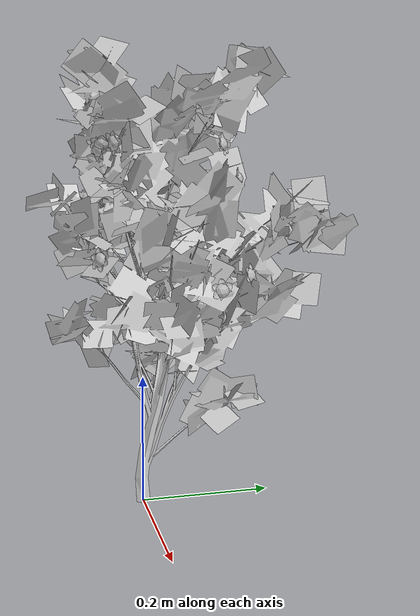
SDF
<?xml version="1.0" ?>
<sdf version="1.6">
  <model name="tree-flowers">
    <!--Skew-Seed:4174534792-->
    <static>true</static>
    <link name="link"/>
    <include>
      <uri>model://tree-mesh</uri>
      <pose>0 0 0 0 0 0</pose>
    </include>
    <joint name="tree_joint" type="fixed">
      <child>tree-mesh::link</child>
      <parent>link</parent>
    </joint>
    <include>
      <name>bramble_0</name>
      <uri>model://bramble</uri>
      <pose> -0.14820569446242854 0.10259778931890959 0.5359599688964238 -2.0612572929041275 1.3751729763553553 0.0</pose>
    </include>
    <joint name="flower_joint_0" type="fixed">
      <child>bramble_0::flower_link</child>
      <parent>link</parent>
    </joint>
    <include>
      <name>bramble_1</name>
      <uri>model://bramble</uri>
      <pose> -0.06725085684577513 0.09990452955882514 0.42551343436803646 -2.6433554886527535 1.2288700498065752 0.0</pose>
    </include>
    <joint name="flower_joint_1" type="fixed">
      <child>bramble_1::flower_link</child>
      <parent>link</parent>
    </joint>
    <include>
      <name>bramble_2</name>
      <uri>model://bramble</uri>
      <pose> 0.11397083429762056 0.08770998319838427 0.31641164473207073 -1.3786244020428362 1.7612144533303005 0.0</pose>
    </include>
    <joint name="flower_joint_2" type="fixed">
      <child>bramble_2::flower_link</child>
      <parent>link</parent>
    </joint>
    <include>
      <name>bramble_3</name>
      <uri>model://bramble</uri>
      <pose> 0.07281380940421596 0.12180511300538246 0.5055227712303022 -1.2220649177301874 1.0296056033826722 0.0</pose>
    </include>
    <joint name="flower_joint_3" type="fixed">
      <child>bramble_3::flower_link</child>
      <parent>link</parent>
    </joint>
    <include>
      <name>bramble_4</name>
      <uri>model://bramble</uri>
      <pose> 0.09918059714325997 -0.07236727573456313 0.5612270249366205 0.2561106588907366 2.3295279105748548 0.0</pose>
    </include>
    <joint name="flower_joint_4" type="fixed">
      <child>bramble_4::flower_link</child>
      <parent>link</parent>
    </joint>
    <include>
      <name>bramble_5</name>
      <uri>model://bramble</uri>
      <pose> -0.14506991470538488 -0.07030141222722394 0.4129014639273759 -3.934466939827449 2.3491057137895677 0.0</pose>
    </include>
    <joint name="flower_joint_5" type="fixed">
      <child>bramble_5::flower_link</child>
      <parent>link</parent>
    </joint>
    <include>
      <name>bramble_6</name>
      <uri>model://bramble</uri>
      <pose> -0.13538367610866037 0.06261269219335797 0.38253107224186883 -3.2035270380544003 1.789775875036839 0.0</pose>
    </include>
    <joint name="flower_joint_6" type="fixed">
      <child>bramble_6::flower_link</child>
      <parent>link</parent>
    </joint>
    <include>
      <name>bramble_7</name>
      <uri>model://bramble</uri>
      <pose> 0.11637268584084326 0.0897531022894749 0.3542409356783517 -0.15951923788626932 1.2064057752209354 0.0</pose>
    </include>
    <joint name="flower_joint_7" type="fixed">
      <child>bramble_7::flower_link</child>
      <parent>link</parent>
    </joint>
    <include>
      <name>bramble_8</name>
      <uri>model://bramble</uri>
      <pose> 0.09177683107933324 -0.07436870757916828 0.5522406470164606 1.1187074966264252 1.9000498407984576 0.0</pose>
    </include>
    <joint name="flower_joint_8" type="fixed">
      <child>bramble_8::flower_link</child>
      <parent>link</parent>
    </joint>
    <include>
      <name>bramble_9</name>
      <uri>model://bramble</uri>
      <pose> 0.11421234210168202 -0.056514780046117374 0.5617043733549478 1.0124870145012876 1.9740707327501166 0.0</pose>
    </include>
    <joint name="flower_joint_9" type="fixed">
      <child>bramble_9::flower_link</child>
      <parent>link</parent>
    </joint>
    <include>
      <name>bramble_10</name>
      <uri>model://bramble</uri>
      <pose> 0.10396111130352359 -0.07562615653243711 0.4030700723856046 0.8997303888548795 1.2469546392698745 0.0</pose>
    </include>
    <joint name="flower_joint_10" type="fixed">
      <child>bramble_10::flower_link</child>
      <parent>link</parent>
    </joint>
    <include>
      <name>bramble_11</name>
      <uri>model://bramble</uri>
      <pose> 0.11716099386053144 0.1285128973088531 0.37427247534246316 -0.8423350631598558 1.1289886762948242 0.0</pose>
    </include>
    <joint name="flower_joint_11" type="fixed">
      <child>bramble_11::flower_link</child>
      <parent>link</parent>
    </joint>
    <include>
      <name>bramble_12</name>
      <uri>model://bramble</uri>
      <pose> -0.14142485861991985 -0.06424738074554681 0.45832956258987867 -3.1918262606520393 2.0673246114799566 0.0</pose>
    </include>
    <joint name="flower_joint_12" type="fixed">
      <child>bramble_12::flower_link</child>
      <parent>link</parent>
    </joint>
    <include>
      <name>bramble_13</name>
      <uri>model://bramble</uri>
      <pose> -0.0662296906107637 0.12275378657754865 0.4203957832262809 -2.827701501556361 1.2968625173399275 0.0</pose>
    </include>
    <joint name="flower_joint_13" type="fixed">
      <child>bramble_13::flower_link</child>
      <parent>link</parent>
    </joint>
    <include>
      <name>bramble_14</name>
      <uri>model://bramble</uri>
      <pose> -0.09682076021395652 0.1173888390645037 0.5625790488949669 -1.7401434163425649 1.1586750705326463 0.0</pose>
    </include>
    <joint name="flower_joint_14" type="fixed">
      <child>bramble_14::flower_link</child>
      <parent>link</parent>
    </joint>
    <include>
      <name>bramble_15</name>
      <uri>model://bramble</uri>
      <pose> -0.08271859191972919 0.10197574584582109 0.49467258187882845 -2.7874553654262733 0.9452936711164746 0.0</pose>
    </include>
    <joint name="flower_joint_15" type="fixed">
      <child>bramble_15::flower_link</child>
      <parent>link</parent>
    </joint>
    <include>
      <name>bramble_16</name>
      <uri>model://bramble</uri>
      <pose> 0.10754462281806862 0.08853324768223347 0.555888641507682 -0.9910777996154916 1.0402574599407695 0.0</pose>
    </include>
    <joint name="flower_joint_16" type="fixed">
      <child>bramble_16::flower_link</child>
      <parent>link</parent>
    </joint>
  </model>
</sdf>

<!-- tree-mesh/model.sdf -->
<sdf version="1.6">
  <model name="tree-mesh">
    <static>true</static>
    <link name="link">

      <collision name="collision">
        <geometry>
          <mesh>
            <uri>model://tree-mesh/meshes/new_tree.dae</uri>
            <scale>0.0625 0.0625 0.0625</scale>
          </mesh>
        </geometry>
      </collision>

      <!-- simplified collision for sake of speed since leaves shouldn't be blocking anyway -->

      <visual name="leaves">
        <geometry>
          <mesh>
            <uri>model://tree-mesh/meshes/leaves.dae</uri>
            <scale>0.0325 0.0325 0.0325</scale>
          </mesh>
        </geometry>
        <material>
          <script>
            <uri>model://tree-mesh/materials/scripts/</uri>
            <uri>model://tree-mesh/materials/textures/</uri>
            <name>NewTree/Branch</name>
          </script>
        </material>
      </visual>
      <visual name="bark">
        <geometry>
          <mesh>
            <uri>model://tree-mesh/meshes/bark.dae</uri>
            <scale>0.0325 0.0325 0.0325</scale>
          </mesh>
        </geometry>
        <material>
          <script>
            <uri>model://tree-mesh/materials/scripts/</uri>
            <uri>model://tree-mesh/materials/textures/</uri>
            <name>NewTree/Bark</name>
          </script>
        </material>
      </visual>
    </link>
  </model>
</sdf>

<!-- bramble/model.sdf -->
<sdf version="1.6">
  <model name="bramble">
    <static>true</static>
    <link name="flower_link">
      <collision name="body_collision">
        <geometry>
          <mesh>
            <uri>model://bramble/meshes/bramble.dae</uri>
            <scale>0.2 0.2 0.2</scale>
          </mesh>
        </geometry>
      </collision>
      <visual name="petals">
        <geometry>
          <mesh>
            <uri>model://bramble/meshes/bramble.dae</uri>
            <scale>0.2 0.2 0.2</scale>
            <submesh>
              <name>petal</name>
            </submesh>
          </mesh>
        </geometry>
        <material>
          <script>
            <uri>model://bramble/materials/scripts/</uri>
            <uri>model://bramble/materials/textures/</uri>
            <name>Bramble/Petal</name>
          </script>
        </material>
      </visual>
      <visual name="carpel">
        <geometry>
          <mesh>
            <uri>model://bramble/meshes/bramble.dae</uri>
            <scale>0.2 0.2 0.2</scale>
            <submesh>
              <name>carpel</name>
            </submesh>
          </mesh>
        </geometry>
        <material>
          <script>
            <uri>model://bramble/materials/scripts/</uri>
            <uri>model://bramble/materials/textures/</uri>
            <name>Bramble/Carpel</name>
          </script>
        </material>
      </visual>
      <visual name="stamen">
        <geometry>
          <mesh>
            <uri>model://bramble/meshes/bramble.dae</uri>
            <scale>0.2 0.2 0.2</scale>
            <submesh>
              <name>stamen</name>
            </submesh>
          </mesh>
        </geometry>
        <material>
          <script>
            <uri>model://bramble/materials/scripts/</uri>
            <uri>model://bramble/materials/textures/</uri>
            <name>Bramble/Stamen</name>
          </script>
        </material>
      </visual>
    </link>
  </model>
</sdf>
